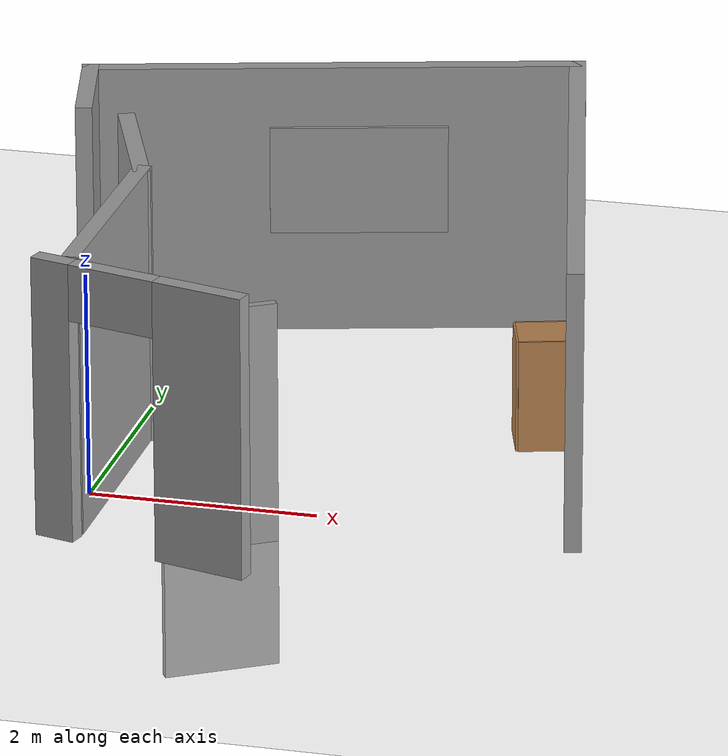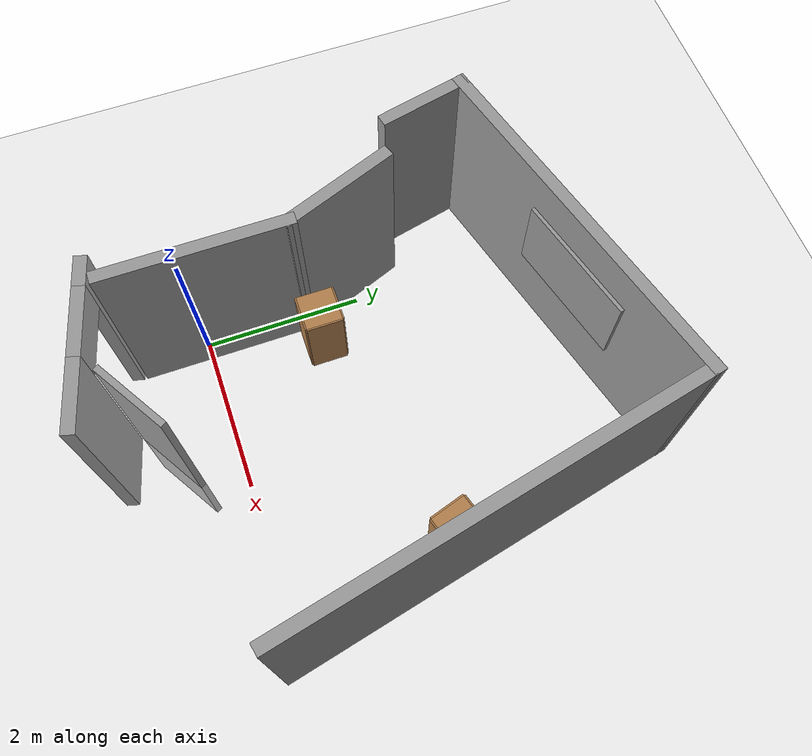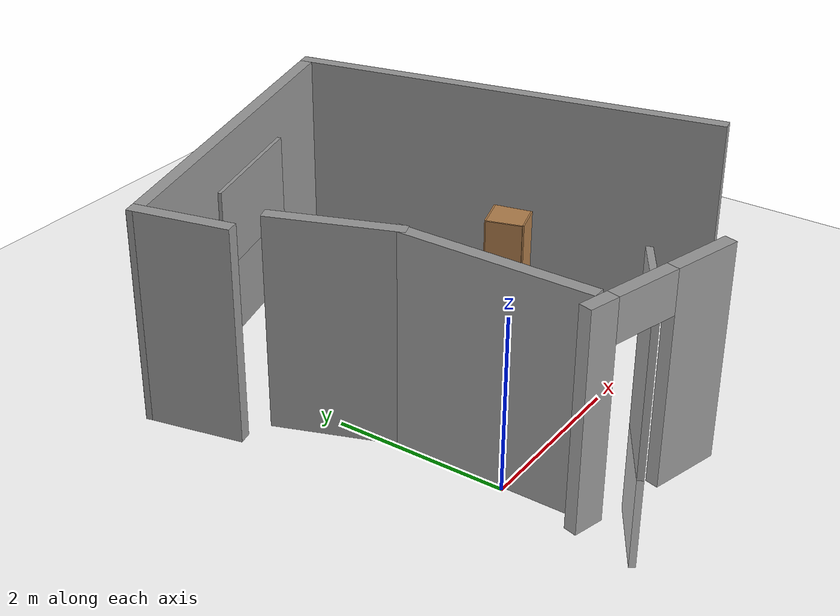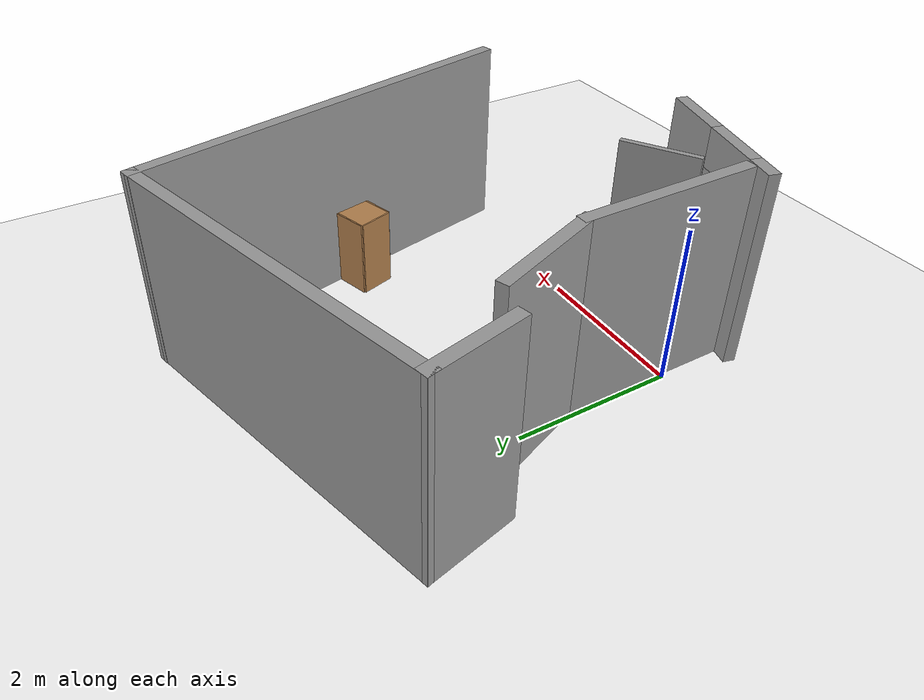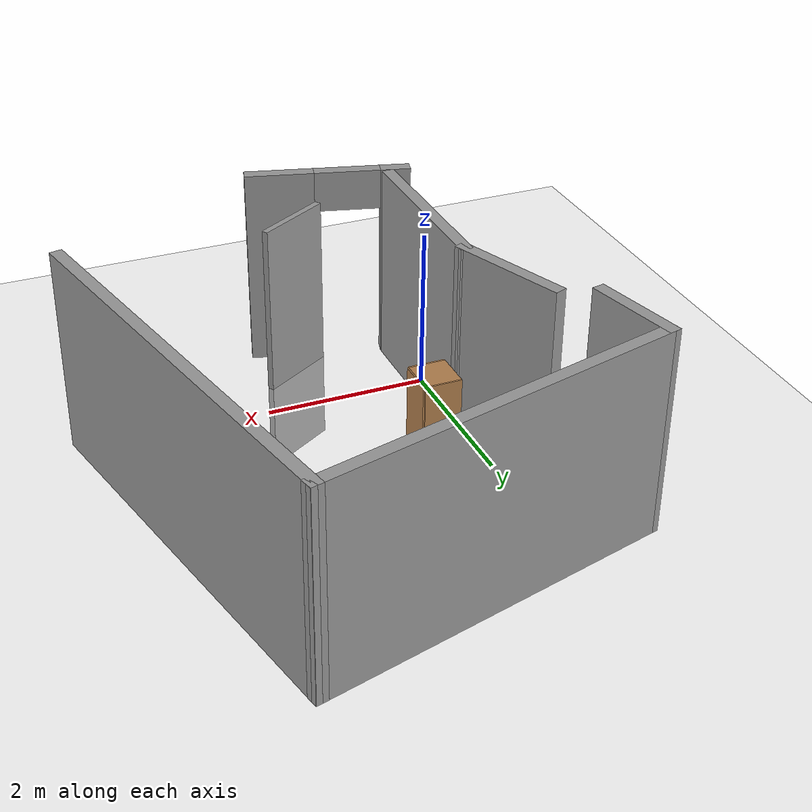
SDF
<sdf version="1.6">
 <world name="default">
  <light name="sun" type="directional">
   <pose>0 0 10 0 -0 0</pose>
   <diffuse>0.8 0.8 0.8 1</diffuse>
   <specular>0.1 0.1 0.1 1</specular>
   <attenuation>
    <range>1000</range>
    <constant>0.9</constant>
    <linear>0.01</linear>
    <quadratic>0.001</quadratic>
   </attenuation>
   <direction>-0.5 0.5 -1</direction>
  </light>
  <model name="ground_plane">
   <static>1</static>
   <link name="link">
    <collision name="collision">
     <geometry><plane><normal>0 0 1</normal><size>100 100</size></plane></geometry>
     <surface><friction><ode><mu>100</mu><mu2>50</mu2></ode></friction></surface>
    </collision>
    <visual name="visual">
     <cast_shadows>0</cast_shadows>
     <geometry><plane><normal>0 0 1</normal><size>100 100</size></plane></geometry>
     <material>
      <script><uri>file://media/materials/scripts/gazebo.material</uri><name>Gazebo/Grey</name></script>
     </material>
    </visual>
   </link>
  </model>
  <gravity>0 0 -9.8</gravity>
  <magnetic_field>6e-06 2.3e-05 -4.2e-05</magnetic_field>
  <atmosphere type="adiabatic"/>
  <physics name="default_physics" default="0" type="ode">
   <max_step_size>0.001</max_step_size>
   <real_time_factor>1</real_time_factor>
   <real_time_update_rate>1000</real_time_update_rate>
  </physics>
  <scene><ambient>0.4 0.4 0.4 1</ambient><background>0.7 0.7 0.7 1</background><shadows>1</shadows></scene>
  <spherical_coordinates>
   <surface_model>EARTH_WGS84</surface_model>
   <latitude_deg>0</latitude_deg>
   <longitude_deg>0</longitude_deg>
   <elevation>0</elevation>
   <heading_deg>0</heading_deg>
  </spherical_coordinates>
  <model name="cabinet">
   <static>1</static>
   <link name="cabinet_bottom_plate">
    <inertial>
     <pose>0 0 -1 0 -0 0</pose>
     <inertia><ixx>2.05</ixx><ixy>0</ixy><ixz>0</ixz><iyy>2.05</iyy><iyz>0</iyz><izz>2.05</izz></inertia>
     <mass>25</mass>
    </inertial>
    <collision name="cabinet_bottom_plate_geom">
     <pose>0 0 0.01 0 -0 0</pose>
     <geometry><box><size>0.45 0.45 0.02</size></box></geometry>
    </collision>
    <visual name="cabinet_bottom_plate_geom_visual">
     <pose>0 0 0.01 0 -0 0</pose>
     <geometry><box><size>0.45 0.45 0.02</size></box></geometry>
     <material>
      <script><uri>file://media/materials/scripts/gazebo.material</uri><name>Gazebo/Wood</name></script>
     </material>
    </visual>
    <collision name="cabinet_bottom_plate_geom_cabinet_back_plate">
     <pose>0.235 0 0.51 0 -0 0</pose>
     <geometry><box><size>0.02 0.45 1.02</size></box></geometry>
    </collision>
    <visual name="cabinet_bottom_plate_geom_cabinet_back_plate_visual">
     <pose>0.235 0 0.51 0 -0 0</pose>
     <geometry><box><size>0.02 0.45 1.02</size></box></geometry>
     <material>
      <script><uri>file://media/materials/scripts/gazebo.material</uri><name>Gazebo/Wood</name></script>
     </material>
    </visual>
    <collision name="cabinet_bottom_plate_geom_cabinet_left_plate">
     <pose>0 0.235 0.51 0 -0 0</pose>
     <geometry><box><size>0.45 0.02 1.02</size></box></geometry>
    </collision>
    <visual name="cabinet_bottom_plate_geom_cabinet_left_plate_visual">
     <pose>0 0.235 0.51 0 -0 0</pose>
     <geometry><box><size>0.45 0.02 1.02</size></box></geometry>
     <material>
      <script><uri>file://media/materials/scripts/gazebo.material</uri><name>Gazebo/Wood</name></script>
     </material>
    </visual>
    <collision name="cabinet_bottom_plate_geom_cabinet_middle_plate">
     <pose>0 0 0.51 0 -0 0</pose>
     <geometry><box><size>0.45 0.45 0.02</size></box></geometry>
    </collision>
    <visual name="cabinet_bottom_plate_geom_cabinet_middle_plate_visual">
     <pose>0 0 0.51 0 -0 0</pose>
     <geometry><box><size>0.45 0.45 0.02</size></box></geometry>
     <material>
      <script><uri>file://media/materials/scripts/gazebo.material</uri><name>Gazebo/Wood</name></script>
     </material>
    </visual>
    <collision name="cabinet_bottom_plate_geom_cabinet_right_plate">
     <pose>0 -0.235 0.51 0 -0 0</pose>
     <geometry><box><size>0.45 0.02 1.02</size></box></geometry>
    </collision>
    <visual name="cabinet_bottom_plate_geom_cabinet_right_plate_visual">
     <pose>0 -0.235 0.51 0 -0 0</pose>
     <geometry><box><size>0.45 0.02 1.02</size></box></geometry>
     <material>
      <script><uri>file://media/materials/scripts/gazebo.material</uri><name>Gazebo/Wood</name></script>
     </material>
    </visual>
    <collision name="cabinet_bottom_plate_geom_cabinet_top_plate">
     <pose>0 0 1.01 0 -0 0</pose>
     <geometry><box><size>0.45 0.45 0.02</size></box></geometry>
    </collision>
    <visual name="cabinet_bottom_plate_geom_cabinet_top_plate_visual">
     <pose>0 0 1.01 0 -0 0</pose>
     <geometry><box><size>0.45 0.45 0.02</size></box></geometry>
     <material>
      <script><uri>file://media/materials/scripts/gazebo.material</uri><name>Gazebo/Wood</name></script>
     </material>
    </visual>
   </link>
   <pose>0.475921 1.42162 0 0 -0 0</pose>
  </model>
  <model name="cabinet_0">
   <static>1</static>
   <link name="cabinet_bottom_plate">
    <inertial>
     <pose>0 0 -1 0 -0 0</pose>
     <inertia><ixx>2.05</ixx><ixy>0</ixy><ixz>0</ixz><iyy>2.05</iyy><iyz>0</iyz><izz>2.05</izz></inertia>
     <mass>25</mass>
    </inertial>
    <collision name="cabinet_bottom_plate_geom">
     <pose>0 0 0.01 0 -0 0</pose>
     <geometry><box><size>0.45 0.45 0.02</size></box></geometry>
    </collision>
    <visual name="cabinet_bottom_plate_geom_visual">
     <pose>0 0 0.01 0 -0 0</pose>
     <geometry><box><size>0.45 0.45 0.02</size></box></geometry>
     <material>
      <script><uri>file://media/materials/scripts/gazebo.material</uri><name>Gazebo/Wood</name></script>
     </material>
    </visual>
    <collision name="cabinet_bottom_plate_geom_cabinet_back_plate">
     <pose>0.235 0 0.51 0 -0 0</pose>
     <geometry><box><size>0.02 0.45 1.02</size></box></geometry>
    </collision>
    <visual name="cabinet_bottom_plate_geom_cabinet_back_plate_visual">
     <pose>0.235 0 0.51 0 -0 0</pose>
     <geometry><box><size>0.02 0.45 1.02</size></box></geometry>
     <material>
      <script><uri>file://media/materials/scripts/gazebo.material</uri><name>Gazebo/Wood</name></script>
     </material>
    </visual>
    <collision name="cabinet_bottom_plate_geom_cabinet_left_plate">
     <pose>0 0.235 0.51 0 -0 0</pose>
     <geometry><box><size>0.45 0.02 1.02</size></box></geometry>
    </collision>
    <visual name="cabinet_bottom_plate_geom_cabinet_left_plate_visual">
     <pose>0 0.235 0.51 0 -0 0</pose>
     <geometry><box><size>0.45 0.02 1.02</size></box></geometry>
     <material>
      <script><uri>file://media/materials/scripts/gazebo.material</uri><name>Gazebo/Wood</name></script>
     </material>
    </visual>
    <collision name="cabinet_bottom_plate_geom_cabinet_middle_plate">
     <pose>0 0 0.51 0 -0 0</pose>
     <geometry><box><size>0.45 0.45 0.02</size></box></geometry>
    </collision>
    <visual name="cabinet_bottom_plate_geom_cabinet_middle_plate_visual">
     <pose>0 0 0.51 0 -0 0</pose>
     <geometry><box><size>0.45 0.45 0.02</size></box></geometry>
     <material>
      <script><uri>file://media/materials/scripts/gazebo.material</uri><name>Gazebo/Wood</name></script>
     </material>
    </visual>
    <collision name="cabinet_bottom_plate_geom_cabinet_right_plate">
     <pose>0 -0.235 0.51 0 -0 0</pose>
     <geometry><box><size>0.45 0.02 1.02</size></box></geometry>
    </collision>
    <visual name="cabinet_bottom_plate_geom_cabinet_right_plate_visual">
     <pose>0 -0.235 0.51 0 -0 0</pose>
     <geometry><box><size>0.45 0.02 1.02</size></box></geometry>
     <material>
      <script><uri>file://media/materials/scripts/gazebo.material</uri><name>Gazebo/Wood</name></script>
     </material>
    </visual>
    <collision name="cabinet_bottom_plate_geom_cabinet_top_plate">
     <pose>0 0 1.01 0 -0 0</pose>
     <geometry><box><size>0.45 0.45 0.02</size></box></geometry>
    </collision>
    <visual name="cabinet_bottom_plate_geom_cabinet_top_plate_visual">
     <pose>0 0 1.01 0 -0 0</pose>
     <geometry><box><size>0.45 0.45 0.02</size></box></geometry>
     <material>
      <script><uri>file://media/materials/scripts/gazebo.material</uri><name>Gazebo/Wood</name></script>
     </material>
    </visual>
   </link>
   <pose>3.48785 2.08221 0 0 0 -2.8504</pose>
  </model>
  <model name="summer_studio_lab_0">
   <pose>1.61217 1.73553 0 0 -0 0</pose>
   <link name="Wall_10">
    <collision name="Wall_10_Collision">
     <geometry><box><size>2.25 0.15 2.5</size></box></geometry>
     <pose>0 0 1.25 0 -0 0</pose>
    </collision>
    <visual name="Wall_10_Visual">
     <pose>0 0 1.25 0 -0 0</pose>
     <geometry><box><size>2.25 0.15 2.5</size></box></geometry>
     <material>
      <script><uri>file://media/materials/scripts/gazebo.material</uri><name>Gazebo/Grey</name></script>
      <ambient>1 1 1 1</ambient>
     </material>
    </visual>
    <pose>-1.49711 -1.46776 0 0 0 -1.5708</pose>
   </link>
   <link name="Wall_12">
    <collision name="Wall_12_Collision">
     <geometry><box><size>1.1528 0.15 2.5</size></box></geometry>
     <pose>0 0 1.25 0 -0 0</pose>
    </collision>
    <visual name="Wall_12_Visual">
     <pose>0 0 1.25 0 -0 0</pose>
     <geometry><box><size>1.1528 0.15 2.5</size></box></geometry>
     <material>
      <script><uri>file://media/materials/scripts/gazebo.material</uri><name>Gazebo/Grey</name></script>
      <ambient>1 1 1 1</ambient>
     </material>
    </visual>
    <pose>-2.52795 1.49381 0 0 -0 1.79503</pose>
   </link>
   <link name="Wall_14">
    <pose>-0.825554 -2.86911 0 0 0 -0.261799</pose>
    <visual name="Wall_14_Visual_0">
     <pose>-0.819333 0 1.25 0 -0 0</pose>
     <geometry><box><size>0.361333 0.15 2.5</size></box></geometry>
     <material>
      <script><uri>file://media/materials/scripts/gazebo.material</uri><name>Gazebo/Grey</name></script>
      <ambient>1 1 1 1</ambient>
     </material>
    </visual>
    <collision name="Wall_14_Collision_0">
     <geometry><box><size>0.361333 0.15 2.5</size></box></geometry>
     <pose>-0.819333 0 1.25 0 -0 0</pose>
    </collision>
    <visual name="Wall_14_Visual_1">
     <pose>0.583168 0 1.25 0 -0 0</pose>
     <geometry><box><size>0.833664 0.15 2.5</size></box></geometry>
     <material>
      <script><uri>file://media/materials/scripts/gazebo.material</uri><name>Gazebo/Grey</name></script>
      <ambient>1 1 1 1</ambient>
     </material>
    </visual>
    <collision name="Wall_14_Collision_1">
     <geometry><box><size>0.833664 0.15 2.5</size></box></geometry>
     <pose>0.583168 0 1.25 0 -0 0</pose>
    </collision>
    <visual name="Wall_14_Visual_2">
     <pose>-0.236165 0 2.25 0 -0 0</pose>
     <geometry><box><size>0.805003 0.15 0.5</size></box></geometry>
     <material>
      <script><uri>file://media/materials/scripts/gazebo.material</uri><name>Gazebo/Grey</name></script>
      <ambient>1 1 1 1</ambient>
     </material>
    </visual>
    <collision name="Wall_14_Collision_2">
     <geometry><box><size>0.805003 0.15 0.5</size></box></geometry>
     <pose>-0.236165 0 2.25 0 -0 0</pose>
    </collision>
   </link>
   <link name="Wall_6">
    <collision name="Wall_6_Collision">
     <geometry><box><size>4.5 0.15 2.5</size></box></geometry>
     <pose>0 0 1.25 0 -0 0</pose>
    </collision>
    <visual name="Wall_6_Visual">
     <pose>0 0 1.25 0 -0 0</pose>
     <geometry><box><size>4.5 0.15 2.5</size></box></geometry>
     <material>
      <script><uri>file://media/materials/scripts/gazebo.material</uri><name>Gazebo/Grey</name></script>
      <ambient>1 1 1 1</ambient>
     </material>
    </visual>
    <pose>-0.53855 2.54559 0 0 -0 0.261799</pose>
   </link>
   <link name="Wall_7">
    <collision name="Wall_7_Collision">
     <geometry><box><size>5.27699 0.15 2.5</size></box></geometry>
     <pose>0 0 1.25 0 -0 0</pose>
    </collision>
    <visual name="Wall_7_Visual">
     <pose>0 0 1.25 0 -0 0</pose>
     <geometry><box><size>5.27699 0.15 2.5</size></box></geometry>
     <material>
      <script><uri>file://media/materials/scripts/gazebo.material</uri><name>Gazebo/Grey</name></script>
      <ambient>1 1 1 1</ambient>
     </material>
    </visual>
    <pose>2.10226 0.602527 0 0 0 -1.35859</pose>
   </link>
   <link name="Wall_9">
    <collision name="Wall_9_Collision">
     <geometry><box><size>1.47172 0.15 2.5</size></box></geometry>
     <pose>0 0 1.25 0 -0 0</pose>
    </collision>
    <visual name="Wall_9_Visual">
     <pose>0 0 1.25 0 -0 0</pose>
     <geometry><box><size>1.47172 0.15 2.5</size></box></geometry>
     <material>
      <script><uri>file://media/materials/scripts/gazebo.material</uri><name>Gazebo/Grey</name></script>
      <ambient>1 1 1 1</ambient>
     </material>
    </visual>
    <pose>-1.7338 0.199257 0 0 0 -1.20451</pose>
   </link>
   <static>1</static>
  </model>
  <model name="unit_box_0">
   <pose>1.36813 -0.798817 0.5 0 0 -2.59396</pose>
   <link name="link">
    <inertial>
     <mass>1</mass>
     <inertia>
      <ixx>0.166667</ixx>
      <ixy>0</ixy>
      <ixz>0</ixz>
      <iyy>0.166667</iyy>
      <iyz>0</iyz>
      <izz>0.166667</izz>
     </inertia>
    </inertial>
    <collision name="collision"><geometry><box><size>1 0.0778718 3.27203</size></box></geometry></collision>
    <visual name="visual">
     <geometry><box><size>1 0.0778718 3.27203</size></box></geometry>
     <material>
      <script><name>Gazebo/Grey</name><uri>file://media/materials/scripts/gazebo.material</uri></script>
     </material>
    </visual>
   </link>
  </model>
  <model name="unit_box_1">
   <pose>1.29831 4.29476 1.44536 0 -0 0.260455</pose>
   <link name="link">
    <inertial>
     <mass>1</mass>
     <inertia>
      <ixx>0.166667</ixx>
      <ixy>0</ixy>
      <ixz>0</ixz>
      <iyy>0.166667</iyy>
      <iyz>0</iyz>
      <izz>0.166667</izz>
     </inertia>
    </inertial>
    <collision name="collision"><geometry><box><size>1.59861 0.150589 1</size></box></geometry></collision>
    <visual name="visual">
     <geometry><box><size>1.59861 0.150589 1</size></box></geometry>
     <material>
      <script><name>Gazebo/Grey</name><uri>file://media/materials/scripts/gazebo.material</uri></script>
     </material>
    </visual>
   </link>
  </model>
 </world>
</sdf>
